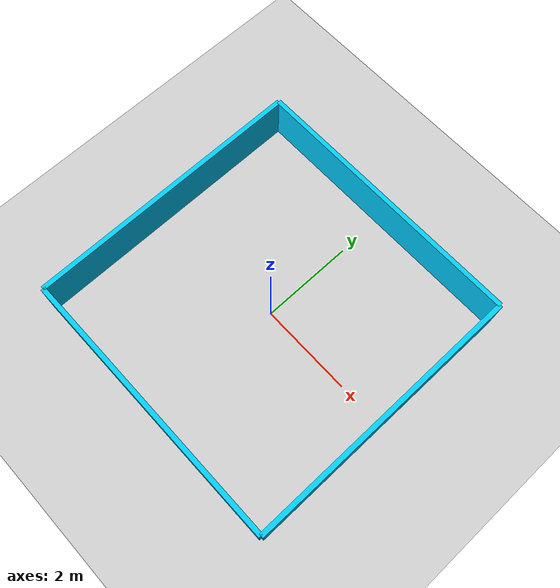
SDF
<?xml version="1.0" ?>
<sdf version="1.8">
  <world name="playpen">

    <!-- Physics -->
    <physics name="1ms" type="ignored">
      <max_step_size>0.001</max_step_size>
      <real_time_factor>1.0</real_time_factor>
    </physics>

    <!-- Plugins -->
    <plugin
      filename="ignition-gazebo-physics-system"
      name="ignition::gazebo::systems::Physics">
    </plugin>
    <plugin
      filename="ignition-gazebo-user-commands-system"
      name="ignition::gazebo::systems::UserCommands">
    </plugin>
    <plugin
      filename="ignition-gazebo-scene-broadcaster-system"
      name="ignition::gazebo::systems::SceneBroadcaster">
    </plugin>

    <!-- Scene -->
    <scene>
      <ambient>0.4 0.4 0.4 1.0</ambient>
      <background>0.7 0.7 0.7 1</background>
      <shadows>true</shadows>
    </scene>

    <!-- Lighting -->
    <light type="directional" name="sun">
      <cast_shadows>true</cast_shadows>
      <pose>0 0 10 0 0 0</pose>
      <diffuse>1.0 1.0 1.0 1</diffuse>
      <specular>0.5 0.5 0.5 1</specular>
      <attenuation>
        <range>1000</range>
        <constant>0.9</constant>
        <linear>0.01</linear>
        <quadratic>0.001</quadratic>
      </attenuation>
      <direction>-0.5 0.1 -0.9</direction>
    </light>

    <!-- Ground Plane with textured appearance -->
    <model name="ground_plane">
      <static>true</static>
      <link name="link">
        <collision name="collision">
          <geometry>
            <plane>
              <normal>0 0 1</normal>
              <size>100 100</size>
            </plane>
          </geometry>
        </collision>
        <visual name="visual">
          <geometry>
            <plane>
              <normal>0 0 1</normal>
              <size>100 100</size>
            </plane>
          </geometry>
          <material>
            <ambient>0.8 0.8 0.8 1</ambient>
            <diffuse>0.8 0.8 0.8 1</diffuse>
            <specular>0.1 0.1 0.1 1</specular>
          </material>
        </visual>
      </link>
    </model>

    <!-- Playpen Barrier - Front (Cyan/Blue) -->
    <model name="barrier_front">
      <pose>3 0 0.5 0 0 0</pose>
      <static>true</static>
      <link name="link">
        <collision name="collision">
          <geometry>
            <box>
              <size>0.1 6 1.0</size>
            </box>
          </geometry>
        </collision>
        <visual name="visual">
          <geometry>
            <box>
              <size>0.1 6 1.0</size>
            </box>
          </geometry>
          <material>
            <ambient>0 0.8 1 1</ambient>
            <diffuse>0 0.8 1 1</diffuse>
            <specular>0.5 0.5 0.5 1</specular>
          </material>
        </visual>
      </link>
    </model>

    <!-- Playpen Barrier - Back (Cyan/Blue) -->
    <model name="barrier_back">
      <pose>-3 0 0.5 0 0 0</pose>
      <static>true</static>
      <link name="link">
        <collision name="collision">
          <geometry>
            <box>
              <size>0.1 6 1.0</size>
            </box>
          </geometry>
        </collision>
        <visual name="visual">
          <geometry>
            <box>
              <size>0.1 6 1.0</size>
            </box>
          </geometry>
          <material>
            <ambient>0 0.8 1 1</ambient>
            <diffuse>0 0.8 1 1</diffuse>
            <specular>0.5 0.5 0.5 1</specular>
          </material>
        </visual>
      </link>
    </model>

    <!-- Playpen Barrier - Left (Cyan/Blue) -->
    <model name="barrier_left">
      <pose>0 3 0.5 0 0 1.5708</pose>
      <static>true</static>
      <link name="link">
        <collision name="collision">
          <geometry>
            <box>
              <size>0.1 6 1.0</size>
            </box>
          </geometry>
        </collision>
        <visual name="visual">
          <geometry>
            <box>
              <size>0.1 6 1.0</size>
            </box>
          </geometry>
          <material>
            <ambient>0 0.8 1 1</ambient>
            <diffuse>0 0.8 1 1</diffuse>
            <specular>0.5 0.5 0.5 1</specular>
          </material>
        </visual>
      </link>
    </model>

    <!-- Playpen Barrier - Right (Cyan/Blue) -->
    <model name="barrier_right">
      <pose>0 -3 0.5 0 0 1.5708</pose>
      <static>true</static>
      <link name="link">
        <collision name="collision">
          <geometry>
            <box>
              <size>0.1 6 1.0</size>
            </box>
          </geometry>
        </collision>
        <visual name="visual">
          <geometry>
            <box>
              <size>0.1 6 1.0</size>
            </box>
          </geometry>
          <material>
            <ambient>0 0.8 1 1</ambient>
            <diffuse>0 0.8 1 1</diffuse>
            <specular>0.5 0.5 0.5 1</specular>
          </material>
        </visual>
      </link>
    </model>

  </world>
</sdf>
